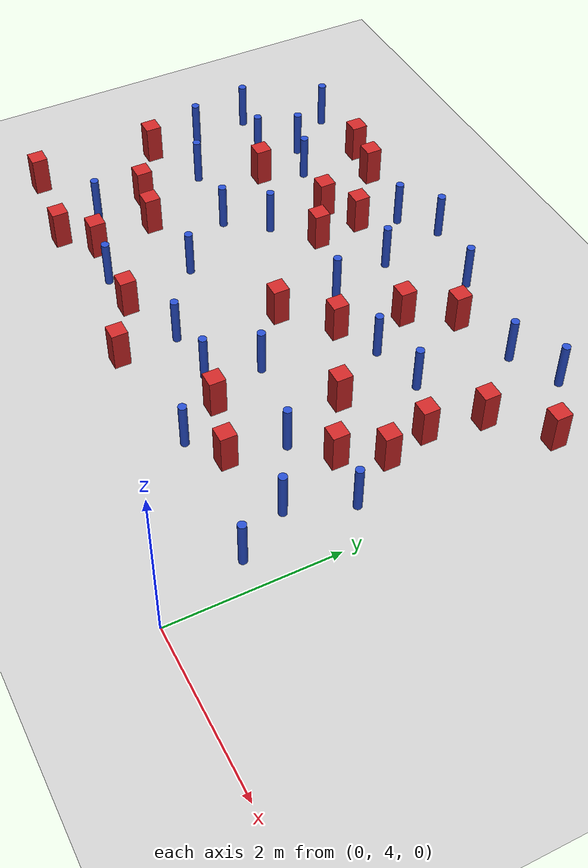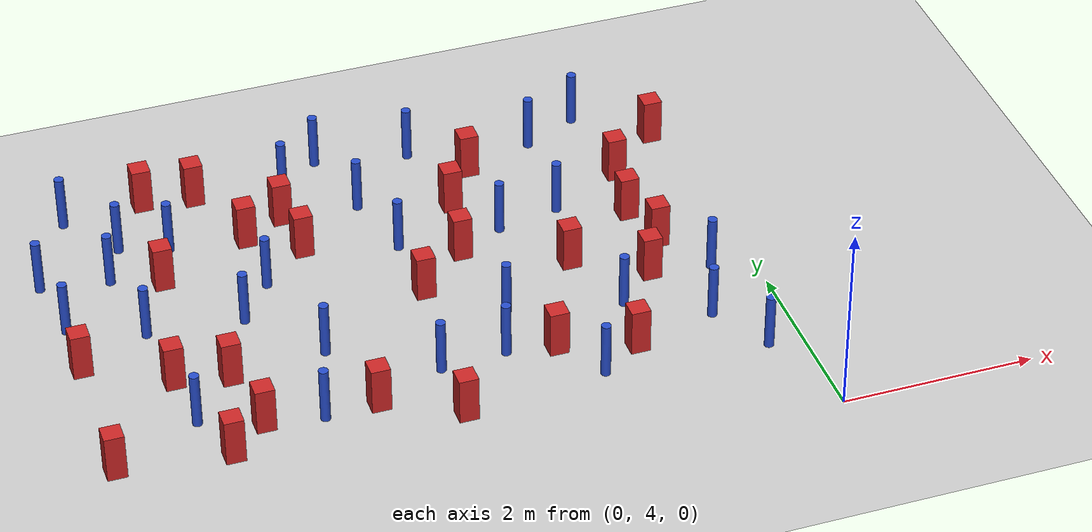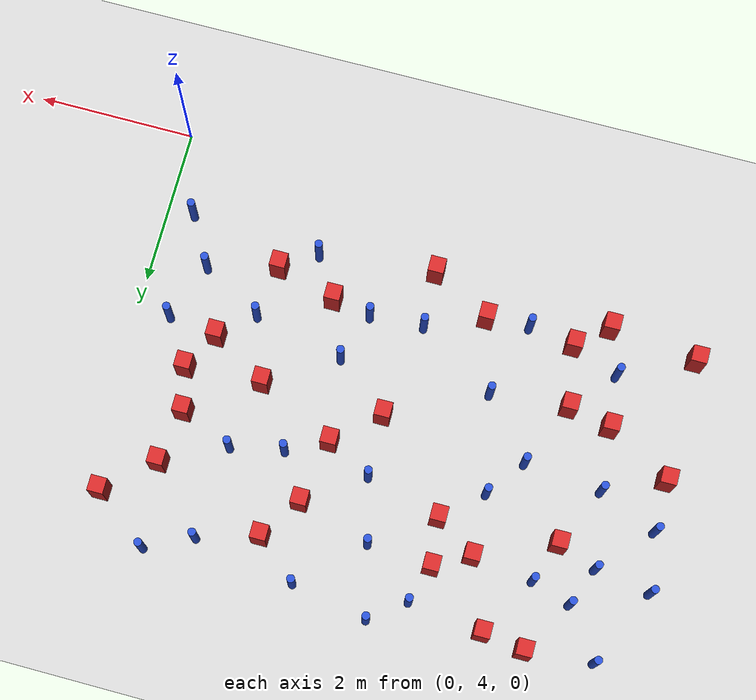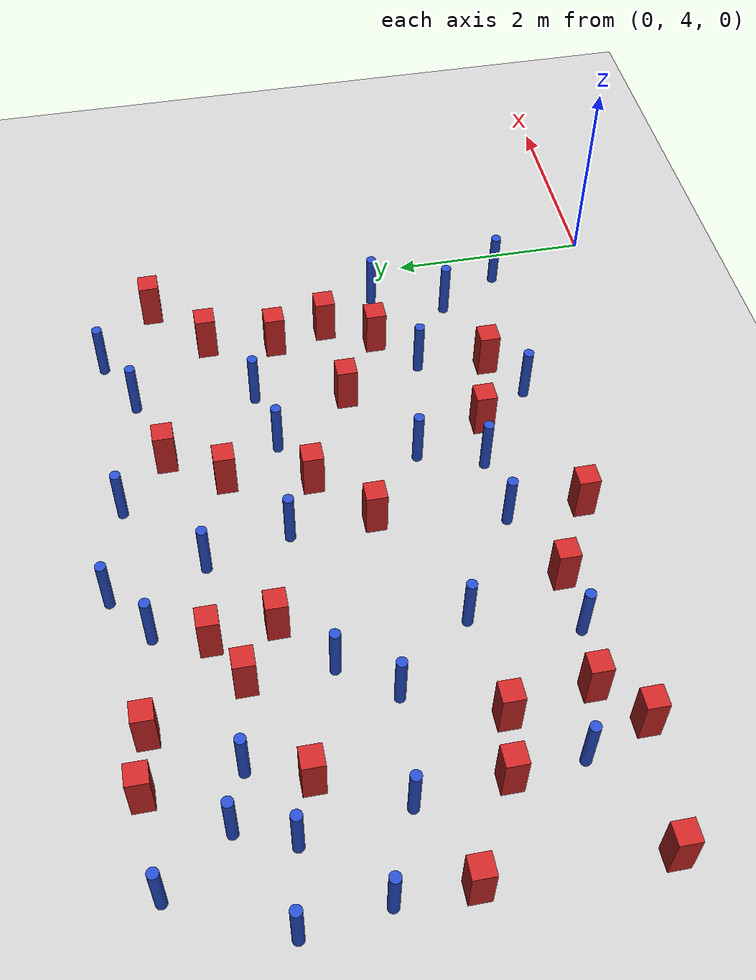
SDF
<sdf version="1.6">
 <world name="default">
  <model name="ground_plane">
   <static>1</static>
   <link name="link">
    <collision name="collision">
     <geometry><plane><normal>0 0 1</normal><size>100 100</size></plane></geometry>
     <surface><friction><ode><mu>100</mu><mu2>50</mu2></ode></friction></surface>
    </collision>
    <visual name="visual">
     <cast_shadows>0</cast_shadows>
     <geometry><plane><normal>0 0 1</normal><size>100 100</size></plane></geometry>
     <material>
      <ambient>1.0 1.0 1.0 1.0</ambient>
      <diffuse>0.8 0.8 0.8 1.0</diffuse>
      <specular>0.01 0.01 0.01 1.000000</specular>
     </material>
    </visual>
   </link>
  </model>
  <model name="pole_obstacle2">
   <static>true</static>
   <pose>-3.78344839935 9.44254157931 -9.4761961606e-06 5.49618799729e-07 2.36310414e-07 -1.55090534824e-07</pose>
   <link name="link">
    <pose>0 0 0.3 0 -0 0</pose>
    <inertial>
     <mass>1</mass>
     <inertia><ixx>0.145833</ixx><ixy>0</ixy><ixz>0</ixz><iyy>0.145833</iyy><iyz>0</iyz><izz>0.125</izz></inertia>
    </inertial>
    <collision name="collision">
     <geometry><cylinder><radius>0.05</radius><length>.6</length></cylinder></geometry>
    </collision>
    <visual name="visual">
     <geometry><cylinder><radius>0.05</radius><length>.6</length></cylinder></geometry>
     <material>
      <script><name>Gazebo/Blue</name><uri>file://media/materials/scripts/gazebo.material</uri></script>
     </material>
    </visual>
   </link>
  </model>
  <model name="square_post_obstacle7">
   <static>true</static>
   <pose>-4.31570606751 8.01415446722 -6.11067671241e-07 -5.50515727128e-06 -8.79689657224e-07 2.37013304536e-05</pose>
   <link name="link">
    <pose>0 0 0.25 0 -0 0</pose>
    <inertial>
     <mass>100</mass>
     <inertia>
      <ixx>0.166667</ixx>
      <ixy>0</ixy>
      <ixz>0</ixz>
      <iyy>0.166667</iyy>
      <iyz>0</iyz>
      <izz>0.166667</izz>
     </inertia>
    </inertial>
    <collision name="collision"><geometry><box><size>.2 .2 .5</size></box></geometry></collision>
    <visual name="visual">
     <geometry><box><size>.2 .2 .5</size></box></geometry>
     <material>
      <script><name>Gazebo/Red</name><uri>file://media/materials/scripts/gazebo.material</uri></script>
     </material>
    </visual>
   </link>
  </model>
  <model name="pole_obstacle13">
   <static>true</static>
   <pose>-3.36392764118 7.75118814584 -9.47619616065e-06 5.49618799738e-07 2.3631041406e-07 -1.55090534801e-07</pose>
   <link name="link">
    <pose>0 0 0.3 0 -0 0</pose>
    <inertial>
     <mass>1</mass>
     <inertia><ixx>0.145833</ixx><ixy>0</ixy><ixz>0</ixz><iyy>0.145833</iyy><iyz>0</iyz><izz>0.125</izz></inertia>
    </inertial>
    <collision name="collision">
     <geometry><cylinder><radius>0.05</radius><length>.6</length></cylinder></geometry>
    </collision>
    <visual name="visual">
     <geometry><cylinder><radius>0.05</radius><length>.6</length></cylinder></geometry>
     <material>
      <script><name>Gazebo/Blue</name><uri>file://media/materials/scripts/gazebo.material</uri></script>
     </material>
    </visual>
   </link>
  </model>
  <model name="pole_obstacle14">
   <static>true</static>
   <pose>-2.64990605663 6.39541912761 -9.47619616065e-06 5.49618799738e-07 2.3631041406e-07 -1.55090534801e-07</pose>
   <link name="link">
    <pose>0 0 0.3 0 -0 0</pose>
    <inertial>
     <mass>1</mass>
     <inertia><ixx>0.145833</ixx><ixy>0</ixy><ixz>0</ixz><iyy>0.145833</iyy><iyz>0</iyz><izz>0.125</izz></inertia>
    </inertial>
    <collision name="collision">
     <geometry><cylinder><radius>0.05</radius><length>.6</length></cylinder></geometry>
    </collision>
    <visual name="visual">
     <geometry><cylinder><radius>0.05</radius><length>.6</length></cylinder></geometry>
     <material>
      <script><name>Gazebo/Blue</name><uri>file://media/materials/scripts/gazebo.material</uri></script>
     </material>
    </visual>
   </link>
  </model>
  <model name="pole_obstacle15">
   <static>true</static>
   <pose>-3.56824416237 8.55106198889 -9.47619616065e-06 5.49618799738e-07 2.36310414059e-07 -1.55090534802e-07</pose>
   <link name="link">
    <pose>0 0 0.3 0 -0 0</pose>
    <inertial>
     <mass>1</mass>
     <inertia><ixx>0.145833</ixx><ixy>0</ixy><ixz>0</ixz><iyy>0.145833</iyy><iyz>0</iyz><izz>0.125</izz></inertia>
    </inertial>
    <collision name="collision">
     <geometry><cylinder><radius>0.05</radius><length>.6</length></cylinder></geometry>
    </collision>
    <visual name="visual">
     <geometry><cylinder><radius>0.05</radius><length>.6</length></cylinder></geometry>
     <material>
      <script><name>Gazebo/Blue</name><uri>file://media/materials/scripts/gazebo.material</uri></script>
     </material>
    </visual>
   </link>
  </model>
  <model name="pole_obstacle17">
   <static>true</static>
   <pose>-5.16976492625 7.09836857027 -9.47619616065e-06 5.49618799737e-07 2.36310414037e-07 -1.55090534814e-07</pose>
   <link name="link">
    <pose>0 0 0.3 0 -0 0</pose>
    <inertial>
     <mass>1</mass>
     <inertia><ixx>0.145833</ixx><ixy>0</ixy><ixz>0</ixz><iyy>0.145833</iyy><iyz>0</iyz><izz>0.125</izz></inertia>
    </inertial>
    <collision name="collision">
     <geometry><cylinder><radius>0.05</radius><length>.6</length></cylinder></geometry>
    </collision>
    <visual name="visual">
     <geometry><cylinder><radius>0.05</radius><length>.6</length></cylinder></geometry>
     <material>
      <script><name>Gazebo/Blue</name><uri>file://media/materials/scripts/gazebo.material</uri></script>
     </material>
    </visual>
   </link>
  </model>
  <model name="square_post_obstacle24">
   <static>true</static>
   <pose>-6.07646952085 6.38595414594 -6.11067671241e-07 -5.50515727128e-06 -8.79689657224e-07 2.37013304536e-05</pose>
   <link name="link">
    <pose>0 0 0.25 0 -0 0</pose>
    <inertial>
     <mass>100</mass>
     <inertia>
      <ixx>0.166667</ixx>
      <ixy>0</ixy>
      <ixz>0</ixz>
      <iyy>0.166667</iyy>
      <iyz>0</iyz>
      <izz>0.166667</izz>
     </inertia>
    </inertial>
    <collision name="collision"><geometry><box><size>.2 .2 .5</size></box></geometry></collision>
    <visual name="visual">
     <geometry><box><size>.2 .2 .5</size></box></geometry>
     <material>
      <script><name>Gazebo/Red</name><uri>file://media/materials/scripts/gazebo.material</uri></script>
     </material>
    </visual>
   </link>
  </model>
  <model name="square_post_obstacle26">
   <static>true</static>
   <pose>-6.92168142128 5.28564803276 -6.11067671241e-07 -5.50515727128e-06 -8.79689657224e-07 2.37013304536e-05</pose>
   <link name="link">
    <pose>0 0 0.25 0 -0 0</pose>
    <inertial>
     <mass>100</mass>
     <inertia>
      <ixx>0.166667</ixx>
      <ixy>0</ixy>
      <ixz>0</ixz>
      <iyy>0.166667</iyy>
      <iyz>0</iyz>
      <izz>0.166667</izz>
     </inertia>
    </inertial>
    <collision name="collision"><geometry><box><size>.2 .2 .5</size></box></geometry></collision>
    <visual name="visual">
     <geometry><box><size>.2 .2 .5</size></box></geometry>
     <material>
      <script><name>Gazebo/Red</name><uri>file://media/materials/scripts/gazebo.material</uri></script>
     </material>
    </visual>
   </link>
  </model>
  <model name="pole_obstacle22">
   <static>true</static>
   <pose>-2.85965782607 5.77475315911 -9.47619616065e-06 5.49618799738e-07 2.3631041406e-07 -1.55090534801e-07</pose>
   <link name="link">
    <pose>0 0 0.3 0 -0 0</pose>
    <inertial>
     <mass>1</mass>
     <inertia><ixx>0.145833</ixx><ixy>0</ixy><ixz>0</ixz><iyy>0.145833</iyy><iyz>0</iyz><izz>0.125</izz></inertia>
    </inertial>
    <collision name="collision">
     <geometry><cylinder><radius>0.05</radius><length>.6</length></cylinder></geometry>
    </collision>
    <visual name="visual">
     <geometry><cylinder><radius>0.05</radius><length>.6</length></cylinder></geometry>
     <material>
      <script><name>Gazebo/Blue</name><uri>file://media/materials/scripts/gazebo.material</uri></script>
     </material>
    </visual>
   </link>
  </model>
  <model name="square_post_obstacle41">
   <static>true</static>
   <pose>-0.83911123168 8.22910441483 -6.11067671241e-07 -5.50515727128e-06 -8.79689657224e-07 2.37013304536e-05</pose>
   <link name="link">
    <pose>0 0 0.25 0 -0 0</pose>
    <inertial>
     <mass>100</mass>
     <inertia>
      <ixx>0.166667</ixx>
      <ixy>0</ixy>
      <ixz>0</ixz>
      <iyy>0.166667</iyy>
      <iyz>0</iyz>
      <izz>0.166667</izz>
     </inertia>
    </inertial>
    <collision name="collision"><geometry><box><size>.2 .2 .5</size></box></geometry></collision>
    <visual name="visual">
     <geometry><box><size>.2 .2 .5</size></box></geometry>
     <material>
      <script><name>Gazebo/Red</name><uri>file://media/materials/scripts/gazebo.material</uri></script>
     </material>
    </visual>
   </link>
  </model>
  <model name="square_post_obstacle44">
   <static>true</static>
   <pose>-2.79490366202 7.44525467669 -6.11067671241e-07 -5.50515727128e-06 -8.79689657224e-07 2.37013304536e-05</pose>
   <link name="link">
    <pose>0 0 0.25 0 -0 0</pose>
    <inertial>
     <mass>100</mass>
     <inertia>
      <ixx>0.166667</ixx>
      <ixy>0</ixy>
      <ixz>0</ixz>
      <iyy>0.166667</iyy>
      <iyz>0</iyz>
      <izz>0.166667</izz>
     </inertia>
    </inertial>
    <collision name="collision"><geometry><box><size>.2 .2 .5</size></box></geometry></collision>
    <visual name="visual">
     <geometry><box><size>.2 .2 .5</size></box></geometry>
     <material>
      <script><name>Gazebo/Red</name><uri>file://media/materials/scripts/gazebo.material</uri></script>
     </material>
    </visual>
   </link>
  </model>
  <model name="square_post_obstacle53">
   <static>true</static>
   <pose>-0.952613741797 7.53595245578 -6.11067671241e-07 -5.50515727128e-06 -8.79689657224e-07 2.37013304536e-05</pose>
   <link name="link">
    <pose>0 0 0.25 0 -0 0</pose>
    <inertial>
     <mass>100</mass>
     <inertia>
      <ixx>0.166667</ixx>
      <ixy>0</ixy>
      <ixz>0</ixz>
      <iyy>0.166667</iyy>
      <iyz>0</iyz>
      <izz>0.166667</izz>
     </inertia>
    </inertial>
    <collision name="collision"><geometry><box><size>.2 .2 .5</size></box></geometry></collision>
    <visual name="visual">
     <geometry><box><size>.2 .2 .5</size></box></geometry>
     <material>
      <script><name>Gazebo/Red</name><uri>file://media/materials/scripts/gazebo.material</uri></script>
     </material>
    </visual>
   </link>
  </model>
  <model name="pole_obstacle62">
   <static>true</static>
   <pose>-5.60121286567 8.47611892052 -9.47619616065e-06 5.49618799737e-07 2.36310414065e-07 -1.55090534796e-07</pose>
   <link name="link">
    <pose>0 0 0.3 0 -0 0</pose>
    <inertial>
     <mass>1</mass>
     <inertia><ixx>0.145833</ixx><ixy>0</ixy><ixz>0</ixz><iyy>0.145833</iyy><iyz>0</iyz><izz>0.125</izz></inertia>
    </inertial>
    <collision name="collision">
     <geometry><cylinder><radius>0.05</radius><length>.6</length></cylinder></geometry>
    </collision>
    <visual name="visual">
     <geometry><cylinder><radius>0.05</radius><length>.6</length></cylinder></geometry>
     <material>
      <script><name>Gazebo/Blue</name><uri>file://media/materials/scripts/gazebo.material</uri></script>
     </material>
    </visual>
   </link>
  </model>
  <model name="pole_obstacle63">
   <static>true</static>
   <pose>-6.09702524567 8.6365005305 -9.47619616065e-06 5.49618799737e-07 2.36310414065e-07 -1.55090534796e-07</pose>
   <link name="link">
    <pose>0 0 0.3 0 -0 0</pose>
    <inertial>
     <mass>1</mass>
     <inertia><ixx>0.145833</ixx><ixy>0</ixy><ixz>0</ixz><iyy>0.145833</iyy><iyz>0</iyz><izz>0.125</izz></inertia>
    </inertial>
    <collision name="collision">
     <geometry><cylinder><radius>0.05</radius><length>.6</length></cylinder></geometry>
    </collision>
    <visual name="visual">
     <geometry><cylinder><radius>0.05</radius><length>.6</length></cylinder></geometry>
     <material>
      <script><name>Gazebo/Blue</name><uri>file://media/materials/scripts/gazebo.material</uri></script>
     </material>
    </visual>
   </link>
  </model>
  <model name="pole_obstacle64">
   <static>true</static>
   <pose>-4.22281651569 9.10339698619 -9.47619616065e-06 5.49618799737e-07 2.36310414065e-07 -1.55090534796e-07</pose>
   <link name="link">
    <pose>0 0 0.3 0 -0 0</pose>
    <inertial>
     <mass>1</mass>
     <inertia><ixx>0.145833</ixx><ixy>0</ixy><ixz>0</ixz><iyy>0.145833</iyy><iyz>0</iyz><izz>0.125</izz></inertia>
    </inertial>
    <collision name="collision">
     <geometry><cylinder><radius>0.05</radius><length>.6</length></cylinder></geometry>
    </collision>
    <visual name="visual">
     <geometry><cylinder><radius>0.05</radius><length>.6</length></cylinder></geometry>
     <material>
      <script><name>Gazebo/Blue</name><uri>file://media/materials/scripts/gazebo.material</uri></script>
     </material>
    </visual>
   </link>
  </model>
  <model name="square_post_obstacle68">
   <static>true</static>
   <pose>-5.53270119698 6.26681060129 -6.11067671241e-07 -5.50515727128e-06 -8.79689657224e-07 2.37013304536e-05</pose>
   <link name="link">
    <pose>0 0 0.25 0 -0 0</pose>
    <inertial>
     <mass>100</mass>
     <inertia>
      <ixx>0.166667</ixx>
      <ixy>0</ixy>
      <ixz>0</ixz>
      <iyy>0.166667</iyy>
      <iyz>0</iyz>
      <izz>0.166667</izz>
     </inertia>
    </inertial>
    <collision name="collision"><geometry><box><size>.2 .2 .5</size></box></geometry></collision>
    <visual name="visual">
     <geometry><box><size>.2 .2 .5</size></box></geometry>
     <material>
      <script><name>Gazebo/Red</name><uri>file://media/materials/scripts/gazebo.material</uri></script>
     </material>
    </visual>
   </link>
  </model>
  <model name="pole_obstacle66">
   <static>true</static>
   <pose>-4.8225449922 5.39662463997 -9.47619616065e-06 5.49618799737e-07 2.36310414037e-07 -1.55090534814e-07</pose>
   <link name="link">
    <pose>0 0 0.3 0 -0 0</pose>
    <inertial>
     <mass>1</mass>
     <inertia><ixx>0.145833</ixx><ixy>0</ixy><ixz>0</ixz><iyy>0.145833</iyy><iyz>0</iyz><izz>0.125</izz></inertia>
    </inertial>
    <collision name="collision">
     <geometry><cylinder><radius>0.05</radius><length>.6</length></cylinder></geometry>
    </collision>
    <visual name="visual">
     <geometry><cylinder><radius>0.05</radius><length>.6</length></cylinder></geometry>
     <material>
      <script><name>Gazebo/Blue</name><uri>file://media/materials/scripts/gazebo.material</uri></script>
     </material>
    </visual>
   </link>
  </model>
  <model name="pole_obstacle68">
   <static>true</static>
   <pose>-6.15177881543 7.19618200302 -9.47619616065e-06 5.49618799737e-07 2.36310414037e-07 -1.55090534814e-07</pose>
   <link name="link">
    <pose>0 0 0.3 0 -0 0</pose>
    <inertial>
     <mass>1</mass>
     <inertia><ixx>0.145833</ixx><ixy>0</ixy><ixz>0</ixz><iyy>0.145833</iyy><iyz>0</iyz><izz>0.125</izz></inertia>
    </inertial>
    <collision name="collision">
     <geometry><cylinder><radius>0.05</radius><length>.6</length></cylinder></geometry>
    </collision>
    <visual name="visual">
     <geometry><cylinder><radius>0.05</radius><length>.6</length></cylinder></geometry>
     <material>
      <script><name>Gazebo/Blue</name><uri>file://media/materials/scripts/gazebo.material</uri></script>
     </material>
    </visual>
   </link>
  </model>
  <model name="square_post_obstacle73">
   <static>true</static>
   <pose>-5.69001642535 9.30534322621 -6.11067671241e-07 -5.50515727128e-06 -8.79689657224e-07 2.37013304536e-05</pose>
   <link name="link">
    <pose>0 0 0.25 0 -0 0</pose>
    <inertial>
     <mass>100</mass>
     <inertia>
      <ixx>0.166667</ixx>
      <ixy>0</ixy>
      <ixz>0</ixz>
      <iyy>0.166667</iyy>
      <iyz>0</iyz>
      <izz>0.166667</izz>
     </inertia>
    </inertial>
    <collision name="collision"><geometry><box><size>.2 .2 .5</size></box></geometry></collision>
    <visual name="visual">
     <geometry><box><size>.2 .2 .5</size></box></geometry>
     <material>
      <script><name>Gazebo/Red</name><uri>file://media/materials/scripts/gazebo.material</uri></script>
     </material>
    </visual>
   </link>
  </model>
  <model name="pole_obstacle87">
   <static>true</static>
   <pose>-1.62145958498 7.83670604916 -9.47619616065e-06 5.49618799737e-07 2.36310414061e-07 -1.550905348e-07</pose>
   <link name="link">
    <pose>0 0 0.3 0 -0 0</pose>
    <inertial>
     <mass>1</mass>
     <inertia><ixx>0.145833</ixx><ixy>0</ixy><ixz>0</ixz><iyy>0.145833</iyy><iyz>0</iyz><izz>0.125</izz></inertia>
    </inertial>
    <collision name="collision">
     <geometry><cylinder><radius>0.05</radius><length>.6</length></cylinder></geometry>
    </collision>
    <visual name="visual">
     <geometry><cylinder><radius>0.05</radius><length>.6</length></cylinder></geometry>
     <material>
      <script><name>Gazebo/Blue</name><uri>file://media/materials/scripts/gazebo.material</uri></script>
     </material>
    </visual>
   </link>
  </model>
  <model name="pole_obstacle88">
   <static>true</static>
   <pose>-2.03699123907 5.16166912229 -9.47619616065e-06 5.49618799737e-07 2.36310414067e-07 -1.55090534796e-07</pose>
   <link name="link">
    <pose>0 0 0.3 0 -0 0</pose>
    <inertial>
     <mass>1</mass>
     <inertia><ixx>0.145833</ixx><ixy>0</ixy><ixz>0</ixz><iyy>0.145833</iyy><iyz>0</iyz><izz>0.125</izz></inertia>
    </inertial>
    <collision name="collision">
     <geometry><cylinder><radius>0.05</radius><length>.6</length></cylinder></geometry>
    </collision>
    <visual name="visual">
     <geometry><cylinder><radius>0.05</radius><length>.6</length></cylinder></geometry>
     <material>
      <script><name>Gazebo/Blue</name><uri>file://media/materials/scripts/gazebo.material</uri></script>
     </material>
    </visual>
   </link>
  </model>
  <model name="pole_obstacle95">
   <static>true</static>
   <pose>-6.53943900605 9.23778726374 -9.47619616065e-06 5.49618799737e-07 2.36310414065e-07 -1.55090534796e-07</pose>
   <link name="link">
    <pose>0 0 0.3 0 -0 0</pose>
    <inertial>
     <mass>1</mass>
     <inertia><ixx>0.145833</ixx><ixy>0</ixy><ixz>0</ixz><iyy>0.145833</iyy><iyz>0</iyz><izz>0.125</izz></inertia>
    </inertial>
    <collision name="collision">
     <geometry><cylinder><radius>0.05</radius><length>.6</length></cylinder></geometry>
    </collision>
    <visual name="visual">
     <geometry><cylinder><radius>0.05</radius><length>.6</length></cylinder></geometry>
     <material>
      <script><name>Gazebo/Blue</name><uri>file://media/materials/scripts/gazebo.material</uri></script>
     </material>
    </visual>
   </link>
  </model>
  <model name="pole_obstacle102">
   <static>true</static>
   <pose>-2.28911493903 7.70403727885 -9.47619616065e-06 5.49618799738e-07 2.3631041406e-07 -1.55090534801e-07</pose>
   <link name="link">
    <pose>0 0 0.3 0 -0 0</pose>
    <inertial>
     <mass>1</mass>
     <inertia><ixx>0.145833</ixx><ixy>0</ixy><ixz>0</ixz><iyy>0.145833</iyy><iyz>0</iyz><izz>0.125</izz></inertia>
    </inertial>
    <collision name="collision">
     <geometry><cylinder><radius>0.05</radius><length>.6</length></cylinder></geometry>
    </collision>
    <visual name="visual">
     <geometry><cylinder><radius>0.05</radius><length>.6</length></cylinder></geometry>
     <material>
      <script><name>Gazebo/Blue</name><uri>file://media/materials/scripts/gazebo.material</uri></script>
     </material>
    </visual>
   </link>
  </model>
  <model name="square_post_obstacle91">
   <static>true</static>
   <pose>-0.818911528405 6.9934468501 -6.11067671241e-07 -5.50515727128e-06 -8.79689657224e-07 2.37013304536e-05</pose>
   <link name="link">
    <pose>0 0 0.25 0 -0 0</pose>
    <inertial>
     <mass>100</mass>
     <inertia>
      <ixx>0.166667</ixx>
      <ixy>0</ixy>
      <ixz>0</ixz>
      <iyy>0.166667</iyy>
      <iyz>0</iyz>
      <izz>0.166667</izz>
     </inertia>
    </inertial>
    <collision name="collision"><geometry><box><size>.2 .2 .5</size></box></geometry></collision>
    <visual name="visual">
     <geometry><box><size>.2 .2 .5</size></box></geometry>
     <material>
      <script><name>Gazebo/Red</name><uri>file://media/materials/scripts/gazebo.material</uri></script>
     </material>
    </visual>
   </link>
  </model>
  <model name="pole_obstacle106">
   <static>true</static>
   <pose>-0.714649135427 5.68265605671 -9.47619616065e-06 5.49618799737e-07 2.36310414065e-07 -1.55090534796e-07</pose>
   <link name="link">
    <pose>0 0 0.3 0 -0 0</pose>
    <inertial>
     <mass>1</mass>
     <inertia><ixx>0.145833</ixx><ixy>0</ixy><ixz>0</ixz><iyy>0.145833</iyy><iyz>0</iyz><izz>0.125</izz></inertia>
    </inertial>
    <collision name="collision">
     <geometry><cylinder><radius>0.05</radius><length>.6</length></cylinder></geometry>
    </collision>
    <visual name="visual">
     <geometry><cylinder><radius>0.05</radius><length>.6</length></cylinder></geometry>
     <material>
      <script><name>Gazebo/Blue</name><uri>file://media/materials/scripts/gazebo.material</uri></script>
     </material>
    </visual>
   </link>
  </model>
  <model name="square_post_obstacle94">
   <static>true</static>
   <pose>-2.28998839713 8.78861958618 -6.11067671241e-07 -5.50515727128e-06 -8.79689657224e-07 2.37013304536e-05</pose>
   <link name="link">
    <pose>0 0 0.25 0 -0 0</pose>
    <inertial>
     <mass>100</mass>
     <inertia>
      <ixx>0.166667</ixx>
      <ixy>0</ixy>
      <ixz>0</ixz>
      <iyy>0.166667</iyy>
      <iyz>0</iyz>
      <izz>0.166667</izz>
     </inertia>
    </inertial>
    <collision name="collision"><geometry><box><size>.2 .2 .5</size></box></geometry></collision>
    <visual name="visual">
     <geometry><box><size>.2 .2 .5</size></box></geometry>
     <material>
      <script><name>Gazebo/Red</name><uri>file://media/materials/scripts/gazebo.material</uri></script>
     </material>
    </visual>
   </link>
  </model>
  <model name="square_post_obstacle99">
   <static>true</static>
   <pose>-4.82432929838 8.361543756 -6.11067671241e-07 -5.50515727128e-06 -8.79689657224e-07 2.37013304536e-05</pose>
   <link name="link">
    <pose>0 0 0.25 0 -0 0</pose>
    <inertial>
     <mass>100</mass>
     <inertia>
      <ixx>0.166667</ixx>
      <ixy>0</ixy>
      <ixz>0</ixz>
      <iyy>0.166667</iyy>
      <iyz>0</iyz>
      <izz>0.166667</izz>
     </inertia>
    </inertial>
    <collision name="collision"><geometry><box><size>.2 .2 .5</size></box></geometry></collision>
    <visual name="visual">
     <geometry><box><size>.2 .2 .5</size></box></geometry>
     <material>
      <script><name>Gazebo/Red</name><uri>file://media/materials/scripts/gazebo.material</uri></script>
     </material>
    </visual>
   </link>
  </model>
  <model name="square_post_obstacle105">
   <static>true</static>
   <pose>-6.88871175189 6.85870672925 -6.11067671241e-07 -5.50515727128e-06 -8.79689657224e-07 2.37013304536e-05</pose>
   <link name="link">
    <pose>0 0 0.25 0 -0 0</pose>
    <inertial>
     <mass>100</mass>
     <inertia>
      <ixx>0.166667</ixx>
      <ixy>0</ixy>
      <ixz>0</ixz>
      <iyy>0.166667</iyy>
      <iyz>0</iyz>
      <izz>0.166667</izz>
     </inertia>
    </inertial>
    <collision name="collision"><geometry><box><size>.2 .2 .5</size></box></geometry></collision>
    <visual name="visual">
     <geometry><box><size>.2 .2 .5</size></box></geometry>
     <material>
      <script><name>Gazebo/Red</name><uri>file://media/materials/scripts/gazebo.material</uri></script>
     </material>
    </visual>
   </link>
  </model>
  <model name="square_post_obstacle111">
   <static>true</static>
   <pose>-2.64316126154 8.25639264833 -6.11067671241e-07 -5.50515727128e-06 -8.79689657224e-07 2.37013304536e-05</pose>
   <link name="link">
    <pose>0 0 0.25 0 -0 0</pose>
    <inertial>
     <mass>100</mass>
     <inertia>
      <ixx>0.166667</ixx>
      <ixy>0</ixy>
      <ixz>0</ixz>
      <iyy>0.166667</iyy>
      <iyz>0</iyz>
      <izz>0.166667</izz>
     </inertia>
    </inertial>
    <collision name="collision"><geometry><box><size>.2 .2 .5</size></box></geometry></collision>
    <visual name="visual">
     <geometry><box><size>.2 .2 .5</size></box></geometry>
     <material>
      <script><name>Gazebo/Red</name><uri>file://media/materials/scripts/gazebo.material</uri></script>
     </material>
    </visual>
   </link>
  </model>
  <model name="pole_obstacle120">
   <static>true</static>
   <pose>-1.52971228156 9.02095005712 -9.47619616065e-06 5.49618799737e-07 2.36310414046e-07 -1.55090534809e-07</pose>
   <link name="link">
    <pose>0 0 0.3 0 -0 0</pose>
    <inertial>
     <mass>1</mass>
     <inertia><ixx>0.145833</ixx><ixy>0</ixy><ixz>0</ixz><iyy>0.145833</iyy><iyz>0</iyz><izz>0.125</izz></inertia>
    </inertial>
    <collision name="collision">
     <geometry><cylinder><radius>0.05</radius><length>.6</length></cylinder></geometry>
    </collision>
    <visual name="visual">
     <geometry><cylinder><radius>0.05</radius><length>.6</length></cylinder></geometry>
     <material>
      <script><name>Gazebo/Blue</name><uri>file://media/materials/scripts/gazebo.material</uri></script>
     </material>
    </visual>
   </link>
  </model>
  <model name="pole_obstacle126">
   <static>true</static>
   <pose>-1.49400401387 6.13399169143 -9.47619616065e-06 5.49618799737e-07 2.36310414061e-07 -1.550905348e-07</pose>
   <link name="link">
    <pose>0 0 0.3 0 -0 0</pose>
    <inertial>
     <mass>1</mass>
     <inertia><ixx>0.145833</ixx><ixy>0</ixy><ixz>0</ixz><iyy>0.145833</iyy><iyz>0</iyz><izz>0.125</izz></inertia>
    </inertial>
    <collision name="collision">
     <geometry><cylinder><radius>0.05</radius><length>.6</length></cylinder></geometry>
    </collision>
    <visual name="visual">
     <geometry><cylinder><radius>0.05</radius><length>.6</length></cylinder></geometry>
     <material>
      <script><name>Gazebo/Blue</name><uri>file://media/materials/scripts/gazebo.material</uri></script>
     </material>
    </visual>
   </link>
  </model>
  <model name="pole_obstacle131">
   <static>true</static>
   <pose>-0.356959611809 5.05324700985 -9.47619616065e-06 5.49618799737e-07 2.36310414065e-07 -1.55090534796e-07</pose>
   <link name="link">
    <pose>0 0 0.3 0 -0 0</pose>
    <inertial>
     <mass>1</mass>
     <inertia><ixx>0.145833</ixx><ixy>0</ixy><ixz>0</ixz><iyy>0.145833</iyy><iyz>0</iyz><izz>0.125</izz></inertia>
    </inertial>
    <collision name="collision">
     <geometry><cylinder><radius>0.05</radius><length>.6</length></cylinder></geometry>
    </collision>
    <visual name="visual">
     <geometry><cylinder><radius>0.05</radius><length>.6</length></cylinder></geometry>
     <material>
      <script><name>Gazebo/Blue</name><uri>file://media/materials/scripts/gazebo.material</uri></script>
     </material>
    </visual>
   </link>
  </model>
  <model name="pole_obstacle137">
   <static>true</static>
   <pose>-6.99995106605 8.25801674731 -9.47619616065e-06 5.49618799737e-07 2.36310414065e-07 -1.55090534796e-07</pose>
   <link name="link">
    <pose>0 0 0.3 0 -0 0</pose>
    <inertial>
     <mass>1</mass>
     <inertia><ixx>0.145833</ixx><ixy>0</ixy><ixz>0</ixz><iyy>0.145833</iyy><iyz>0</iyz><izz>0.125</izz></inertia>
    </inertial>
    <collision name="collision">
     <geometry><cylinder><radius>0.05</radius><length>.6</length></cylinder></geometry>
    </collision>
    <visual name="visual">
     <geometry><cylinder><radius>0.05</radius><length>.6</length></cylinder></geometry>
     <material>
      <script><name>Gazebo/Blue</name><uri>file://media/materials/scripts/gazebo.material</uri></script>
     </material>
    </visual>
   </link>
  </model>
  <model name="square_post_obstacle121">
   <static>true</static>
   <pose>-0.251796869304 8.74827335803 -6.11067671241e-07 -5.50515727128e-06 -8.79689657224e-07 2.37013304536e-05</pose>
   <link name="link">
    <pose>0 0 0.25 0 -0 0</pose>
    <inertial>
     <mass>100</mass>
     <inertia>
      <ixx>0.166667</ixx>
      <ixy>0</ixy>
      <ixz>0</ixz>
      <iyy>0.166667</iyy>
      <iyz>0</iyz>
      <izz>0.166667</izz>
     </inertia>
    </inertial>
    <collision name="collision"><geometry><box><size>.2 .2 .5</size></box></geometry></collision>
    <visual name="visual">
     <geometry><box><size>.2 .2 .5</size></box></geometry>
     <material>
      <script><name>Gazebo/Red</name><uri>file://media/materials/scripts/gazebo.material</uri></script>
     </material>
    </visual>
   </link>
  </model>
  <model name="square_post_obstacle128">
   <static>true</static>
   <pose>-3.34102699218 6.95176550674 -6.11067671241e-07 -5.50515727128e-06 -8.79689657224e-07 2.37013304536e-05</pose>
   <link name="link">
    <pose>0 0 0.25 0 -0 0</pose>
    <inertial>
     <mass>100</mass>
     <inertia>
      <ixx>0.166667</ixx>
      <ixy>0</ixy>
      <ixz>0</ixz>
      <iyy>0.166667</iyy>
      <iyz>0</iyz>
      <izz>0.166667</izz>
     </inertia>
    </inertial>
    <collision name="collision"><geometry><box><size>.2 .2 .5</size></box></geometry></collision>
    <visual name="visual">
     <geometry><box><size>.2 .2 .5</size></box></geometry>
     <material>
      <script><name>Gazebo/Red</name><uri>file://media/materials/scripts/gazebo.material</uri></script>
     </material>
    </visual>
   </link>
  </model>
  <model name="pole_obstacle151">
   <static>true</static>
   <pose>-4.80838348984 7.58558157853 -9.47619616065e-06 5.49618799737e-07 2.36310414037e-07 -1.55090534814e-07</pose>
   <link name="link">
    <pose>0 0 0.3 0 -0 0</pose>
    <inertial>
     <mass>1</mass>
     <inertia><ixx>0.145833</ixx><ixy>0</ixy><ixz>0</ixz><iyy>0.145833</iyy><iyz>0</iyz><izz>0.125</izz></inertia>
    </inertial>
    <collision name="collision">
     <geometry><cylinder><radius>0.05</radius><length>.6</length></cylinder></geometry>
    </collision>
    <visual name="visual">
     <geometry><cylinder><radius>0.05</radius><length>.6</length></cylinder></geometry>
     <material>
      <script><name>Gazebo/Blue</name><uri>file://media/materials/scripts/gazebo.material</uri></script>
     </material>
    </visual>
   </link>
  </model>
  <model name="square_post_obstacle141">
   <static>true</static>
   <pose>-5.40771866682 5.4847881309 -6.11067671241e-07 -5.50515727128e-06 -8.79689657224e-07 2.37013304536e-05</pose>
   <link name="link">
    <pose>0 0 0.25 0 -0 0</pose>
    <inertial>
     <mass>100</mass>
     <inertia>
      <ixx>0.166667</ixx>
      <ixy>0</ixy>
      <ixz>0</ixz>
      <iyy>0.166667</iyy>
      <iyz>0</iyz>
      <izz>0.166667</izz>
     </inertia>
    </inertial>
    <collision name="collision"><geometry><box><size>.2 .2 .5</size></box></geometry></collision>
    <visual name="visual">
     <geometry><box><size>.2 .2 .5</size></box></geometry>
     <material>
      <script><name>Gazebo/Red</name><uri>file://media/materials/scripts/gazebo.material</uri></script>
     </material>
    </visual>
   </link>
  </model>
  <model name="square_post_obstacle151">
   <static>true</static>
   <pose>-1.7912987171 6.94001748223 -6.11067671241e-07 -5.50515727128e-06 -8.79689657224e-07 2.37013304536e-05</pose>
   <link name="link">
    <pose>0 0 0.25 0 -0 0</pose>
    <inertial>
     <mass>100</mass>
     <inertia>
      <ixx>0.166667</ixx>
      <ixy>0</ixy>
      <ixz>0</ixz>
      <iyy>0.166667</iyy>
      <iyz>0</iyz>
      <izz>0.166667</izz>
     </inertia>
    </inertial>
    <collision name="collision"><geometry><box><size>.2 .2 .5</size></box></geometry></collision>
    <visual name="visual">
     <geometry><box><size>.2 .2 .5</size></box></geometry>
     <material>
      <script><name>Gazebo/Red</name><uri>file://media/materials/scripts/gazebo.material</uri></script>
     </material>
    </visual>
   </link>
  </model>
  <model name="pole_obstacle166">
   <static>true</static>
   <pose>-2.8126333257 9.25106106075 -9.4761961606e-06 5.49618799729e-07 2.36310414e-07 -1.55090534824e-07</pose>
   <link name="link">
    <pose>0 0 0.3 0 -0 0</pose>
    <inertial>
     <mass>1</mass>
     <inertia><ixx>0.145833</ixx><ixy>0</ixy><ixz>0</ixz><iyy>0.145833</iyy><iyz>0</iyz><izz>0.125</izz></inertia>
    </inertial>
    <collision name="collision">
     <geometry><cylinder><radius>0.05</radius><length>.6</length></cylinder></geometry>
    </collision>
    <visual name="visual">
     <geometry><cylinder><radius>0.05</radius><length>.6</length></cylinder></geometry>
     <material>
      <script><name>Gazebo/Blue</name><uri>file://media/materials/scripts/gazebo.material</uri></script>
     </material>
    </visual>
   </link>
  </model>
  <model name="pole_obstacle170">
   <static>true</static>
   <pose>-4.54667774221 6.35827518307 -9.47619616065e-06 5.49618799737e-07 2.36310414037e-07 -1.55090534814e-07</pose>
   <link name="link">
    <pose>0 0 0.3 0 -0 0</pose>
    <inertial>
     <mass>1</mass>
     <inertia><ixx>0.145833</ixx><ixy>0</ixy><ixz>0</ixz><iyy>0.145833</iyy><iyz>0</iyz><izz>0.125</izz></inertia>
    </inertial>
    <collision name="collision">
     <geometry><cylinder><radius>0.05</radius><length>.6</length></cylinder></geometry>
    </collision>
    <visual name="visual">
     <geometry><cylinder><radius>0.05</radius><length>.6</length></cylinder></geometry>
     <material>
      <script><name>Gazebo/Blue</name><uri>file://media/materials/scripts/gazebo.material</uri></script>
     </material>
    </visual>
   </link>
  </model>
  <model name="pole_obstacle176">
   <static>true</static>
   <pose>-3.54448333146 5.73200540002 -9.4761961606e-06 5.49618799729e-07 2.36310414006e-07 -1.55090534822e-07</pose>
   <link name="link">
    <pose>0 0 0.3 0 -0 0</pose>
    <inertial>
     <mass>1</mass>
     <inertia><ixx>0.145833</ixx><ixy>0</ixy><ixz>0</ixz><iyy>0.145833</iyy><iyz>0</iyz><izz>0.125</izz></inertia>
    </inertial>
    <collision name="collision">
     <geometry><cylinder><radius>0.05</radius><length>.6</length></cylinder></geometry>
    </collision>
    <visual name="visual">
     <geometry><cylinder><radius>0.05</radius><length>.6</length></cylinder></geometry>
     <material>
      <script><name>Gazebo/Blue</name><uri>file://media/materials/scripts/gazebo.material</uri></script>
     </material>
    </visual>
   </link>
  </model>
  <model name="square_post_obstacle166">
   <static>true</static>
   <pose>-4.38028989068 8.60922114294 -6.11067671241e-07 -5.50515727128e-06 -8.79689657224e-07 2.37013304536e-05</pose>
   <link name="link">
    <pose>0 0 0.25 0 -0 0</pose>
    <inertial>
     <mass>100</mass>
     <inertia>
      <ixx>0.166667</ixx>
      <ixy>0</ixy>
      <ixz>0</ixz>
      <iyy>0.166667</iyy>
      <iyz>0</iyz>
      <izz>0.166667</izz>
     </inertia>
    </inertial>
    <collision name="collision"><geometry><box><size>.2 .2 .5</size></box></geometry></collision>
    <visual name="visual">
     <geometry><box><size>.2 .2 .5</size></box></geometry>
     <material>
      <script><name>Gazebo/Red</name><uri>file://media/materials/scripts/gazebo.material</uri></script>
     </material>
    </visual>
   </link>
  </model>
  <model name="pole_obstacle178">
   <static>true</static>
   <pose>-6.89359797189 7.51326977818 -9.47619616065e-06 5.49618799737e-07 2.36310414037e-07 -1.55090534814e-07</pose>
   <link name="link">
    <pose>0 0 0.3 0 -0 0</pose>
    <inertial>
     <mass>1</mass>
     <inertia><ixx>0.145833</ixx><ixy>0</ixy><ixz>0</ixz><iyy>0.145833</iyy><iyz>0</iyz><izz>0.125</izz></inertia>
    </inertial>
    <collision name="collision">
     <geometry><cylinder><radius>0.05</radius><length>.6</length></cylinder></geometry>
    </collision>
    <visual name="visual">
     <geometry><cylinder><radius>0.05</radius><length>.6</length></cylinder></geometry>
     <material>
      <script><name>Gazebo/Blue</name><uri>file://media/materials/scripts/gazebo.material</uri></script>
     </material>
    </visual>
   </link>
  </model>
  <model name="pole_obstacle179">
   <static>true</static>
   <pose>-0.442298864446 6.41991817784 -9.47619616065e-06 5.49618799737e-07 2.36310414065e-07 -1.55090534796e-07</pose>
   <link name="link">
    <pose>0 0 0.3 0 -0 0</pose>
    <inertial>
     <mass>1</mass>
     <inertia><ixx>0.145833</ixx><ixy>0</ixy><ixz>0</ixz><iyy>0.145833</iyy><iyz>0</iyz><izz>0.125</izz></inertia>
    </inertial>
    <collision name="collision">
     <geometry><cylinder><radius>0.05</radius><length>.6</length></cylinder></geometry>
    </collision>
    <visual name="visual">
     <geometry><cylinder><radius>0.05</radius><length>.6</length></cylinder></geometry>
     <material>
      <script><name>Gazebo/Blue</name><uri>file://media/materials/scripts/gazebo.material</uri></script>
     </material>
    </visual>
   </link>
  </model>
  <model name="pole_obstacle180">
   <static>true</static>
   <pose>-0.943905879097 9.3017294664 -9.47619616065e-06 5.49618799737e-07 2.36310414038e-07 -1.55090534813e-07</pose>
   <link name="link">
    <pose>0 0 0.3 0 -0 0</pose>
    <inertial>
     <mass>1</mass>
     <inertia><ixx>0.145833</ixx><ixy>0</ixy><ixz>0</ixz><iyy>0.145833</iyy><iyz>0</iyz><izz>0.125</izz></inertia>
    </inertial>
    <collision name="collision">
     <geometry><cylinder><radius>0.05</radius><length>.6</length></cylinder></geometry>
    </collision>
    <visual name="visual">
     <geometry><cylinder><radius>0.05</radius><length>.6</length></cylinder></geometry>
     <material>
      <script><name>Gazebo/Blue</name><uri>file://media/materials/scripts/gazebo.material</uri></script>
     </material>
    </visual>
   </link>
  </model>
  <model name="square_post_obstacle174">
   <static>true</static>
   <pose>-4.27509285451 5.42036373884 -6.11067671241e-07 -5.50515727128e-06 -8.79689657224e-07 2.37013304536e-05</pose>
   <link name="link">
    <pose>0 0 0.25 0 -0 0</pose>
    <inertial>
     <mass>100</mass>
     <inertia>
      <ixx>0.166667</ixx>
      <ixy>0</ixy>
      <ixz>0</ixz>
      <iyy>0.166667</iyy>
      <iyz>0</iyz>
      <izz>0.166667</izz>
     </inertia>
    </inertial>
    <collision name="collision"><geometry><box><size>.2 .2 .5</size></box></geometry></collision>
    <visual name="visual">
     <geometry><box><size>.2 .2 .5</size></box></geometry>
     <material>
      <script><name>Gazebo/Red</name><uri>file://media/materials/scripts/gazebo.material</uri></script>
     </material>
    </visual>
   </link>
  </model>
  <model name="square_post_obstacle186">
   <static>true</static>
   <pose>-5.79978107373 7.94693669618 -6.11067671241e-07 -5.50515727128e-06 -8.79689657224e-07 2.37013304536e-05</pose>
   <link name="link">
    <pose>0 0 0.25 0 -0 0</pose>
    <inertial>
     <mass>100</mass>
     <inertia>
      <ixx>0.166667</ixx>
      <ixy>0</ixy>
      <ixz>0</ixz>
      <iyy>0.166667</iyy>
      <iyz>0</iyz>
      <izz>0.166667</izz>
     </inertia>
    </inertial>
    <collision name="collision"><geometry><box><size>.2 .2 .5</size></box></geometry></collision>
    <visual name="visual">
     <geometry><box><size>.2 .2 .5</size></box></geometry>
     <material>
      <script><name>Gazebo/Red</name><uri>file://media/materials/scripts/gazebo.material</uri></script>
     </material>
    </visual>
   </link>
  </model>
  <model name="square_post_obstacle189">
   <static>true</static>
   <pose>-5.80019961623 5.14692002649 -6.11067671241e-07 -5.50515727128e-06 -8.79689657224e-07 2.37013304536e-05</pose>
   <link name="link">
    <pose>0 0 0.25 0 -0 0</pose>
    <inertial>
     <mass>100</mass>
     <inertia>
      <ixx>0.166667</ixx>
      <ixy>0</ixy>
      <ixz>0</ixz>
      <iyy>0.166667</iyy>
      <iyz>0</iyz>
      <izz>0.166667</izz>
     </inertia>
    </inertial>
    <collision name="collision"><geometry><box><size>.2 .2 .5</size></box></geometry></collision>
    <visual name="visual">
     <geometry><box><size>.2 .2 .5</size></box></geometry>
     <material>
      <script><name>Gazebo/Red</name><uri>file://media/materials/scripts/gazebo.material</uri></script>
     </material>
    </visual>
   </link>
  </model>
  <model name="square_post_obstacle196">
   <static>true</static>
   <pose>-1.08016833105 6.50944322685 -6.11067671241e-07 -5.50515727128e-06 -8.79689657224e-07 2.37013304536e-05</pose>
   <link name="link">
    <pose>0 0 0.25 0 -0 0</pose>
    <inertial>
     <mass>100</mass>
     <inertia>
      <ixx>0.166667</ixx>
      <ixy>0</ixy>
      <ixz>0</ixz>
      <iyy>0.166667</iyy>
      <iyz>0</iyz>
      <izz>0.166667</izz>
     </inertia>
    </inertial>
    <collision name="collision"><geometry><box><size>.2 .2 .5</size></box></geometry></collision>
    <visual name="visual">
     <geometry><box><size>.2 .2 .5</size></box></geometry>
     <material>
      <script><name>Gazebo/Red</name><uri>file://media/materials/scripts/gazebo.material</uri></script>
     </material>
    </visual>
   </link>
  </model>
  <model name="square_post_obstacle200">
   <static>true</static>
   <pose>-2.36510283219 5.67951292109 -6.11067671241e-07 -5.50515727128e-06 -8.79689657224e-07 2.37013304536e-05</pose>
   <link name="link">
    <pose>0 0 0.25 0 -0 0</pose>
    <inertial>
     <mass>100</mass>
     <inertia>
      <ixx>0.166667</ixx>
      <ixy>0</ixy>
      <ixz>0</ixz>
      <iyy>0.166667</iyy>
      <iyz>0</iyz>
      <izz>0.166667</izz>
     </inertia>
    </inertial>
    <collision name="collision"><geometry><box><size>.2 .2 .5</size></box></geometry></collision>
    <visual name="visual">
     <geometry><box><size>.2 .2 .5</size></box></geometry>
     <material>
      <script><name>Gazebo/Red</name><uri>file://media/materials/scripts/gazebo.material</uri></script>
     </material>
    </visual>
   </link>
  </model>
  <model name="pole_obstacle201">
   <static>true</static>
   <pose>-6.01042003645 5.7266881252 -9.47619616065e-06 5.49618799737e-07 2.36310414037e-07 -1.55090534814e-07</pose>
   <link name="link">
    <pose>0 0 0.3 0 -0 0</pose>
    <inertial>
     <mass>1</mass>
     <inertia><ixx>0.145833</ixx><ixy>0</ixy><ixz>0</ixz><iyy>0.145833</iyy><iyz>0</iyz><izz>0.125</izz></inertia>
    </inertial>
    <collision name="collision">
     <geometry><cylinder><radius>0.05</radius><length>.6</length></cylinder></geometry>
    </collision>
    <visual name="visual">
     <geometry><cylinder><radius>0.05</radius><length>.6</length></cylinder></geometry>
     <material>
      <script><name>Gazebo/Blue</name><uri>file://media/materials/scripts/gazebo.material</uri></script>
     </material>
    </visual>
   </link>
  </model>
  <model name="square_post_obstacle217">
   <static>true</static>
   <pose>-1.59938966954 5.45025371716 -6.11067671241e-07 -5.50515727128e-06 -8.79689657224e-07 2.37013304536e-05</pose>
   <link name="link">
    <pose>0 0 0.25 0 -0 0</pose>
    <inertial>
     <mass>100</mass>
     <inertia>
      <ixx>0.166667</ixx>
      <ixy>0</ixy>
      <ixz>0</ixz>
      <iyy>0.166667</iyy>
      <iyz>0</iyz>
      <izz>0.166667</izz>
     </inertia>
    </inertial>
    <collision name="collision"><geometry><box><size>.2 .2 .5</size></box></geometry></collision>
    <visual name="visual">
     <geometry><box><size>.2 .2 .5</size></box></geometry>
     <material>
      <script><name>Gazebo/Red</name><uri>file://media/materials/scripts/gazebo.material</uri></script>
     </material>
    </visual>
   </link>
  </model>
  <model name="square_post_obstacle218">
   <static>true</static>
   <pose>-3.52072446025 5.0075544128 -6.11067671241e-07 -5.50515727128e-06 -8.79689657224e-07 2.37013304536e-05</pose>
   <link name="link">
    <pose>0 0 0.25 0 -0 0</pose>
    <inertial>
     <mass>100</mass>
     <inertia>
      <ixx>0.166667</ixx>
      <ixy>0</ixy>
      <ixz>0</ixz>
      <iyy>0.166667</iyy>
      <iyz>0</iyz>
      <izz>0.166667</izz>
     </inertia>
    </inertial>
    <collision name="collision"><geometry><box><size>.2 .2 .5</size></box></geometry></collision>
    <visual name="visual">
     <geometry><box><size>.2 .2 .5</size></box></geometry>
     <material>
      <script><name>Gazebo/Red</name><uri>file://media/materials/scripts/gazebo.material</uri></script>
     </material>
    </visual>
   </link>
  </model>
  <model name="square_post_obstacle225">
   <static>true</static>
   <pose>-5.15881740403 9.22138597482 -6.11067671241e-07 -5.50515727128e-06 -8.79689657224e-07 2.37013304536e-05</pose>
   <link name="link">
    <pose>0 0 0.25 0 -0 0</pose>
    <inertial>
     <mass>100</mass>
     <inertia>
      <ixx>0.166667</ixx>
      <ixy>0</ixy>
      <ixz>0</ixz>
      <iyy>0.166667</iyy>
      <iyz>0</iyz>
      <izz>0.166667</izz>
     </inertia>
    </inertial>
    <collision name="collision"><geometry><box><size>.2 .2 .5</size></box></geometry></collision>
    <visual name="visual">
     <geometry><box><size>.2 .2 .5</size></box></geometry>
     <material>
      <script><name>Gazebo/Red</name><uri>file://media/materials/scripts/gazebo.material</uri></script>
     </material>
    </visual>
   </link>
  </model>
  <model name="pole_obstacle207">
   <static>true</static>
   <pose>-6.29714101202 8.14408661988 -9.47619616065e-06 5.49618799737e-07 2.36310414065e-07 -1.55090534796e-07</pose>
   <link name="link">
    <pose>0 0 0.3 0 -0 0</pose>
    <inertial>
     <mass>1</mass>
     <inertia><ixx>0.145833</ixx><ixy>0</ixy><ixz>0</ixz><iyy>0.145833</iyy><iyz>0</iyz><izz>0.125</izz></inertia>
    </inertial>
    <collision name="collision">
     <geometry><cylinder><radius>0.05</radius><length>.6</length></cylinder></geometry>
    </collision>
    <visual name="visual">
     <geometry><cylinder><radius>0.05</radius><length>.6</length></cylinder></geometry>
     <material>
      <script><name>Gazebo/Blue</name><uri>file://media/materials/scripts/gazebo.material</uri></script>
     </material>
    </visual>
   </link>
  </model>
 </world>
</sdf>
